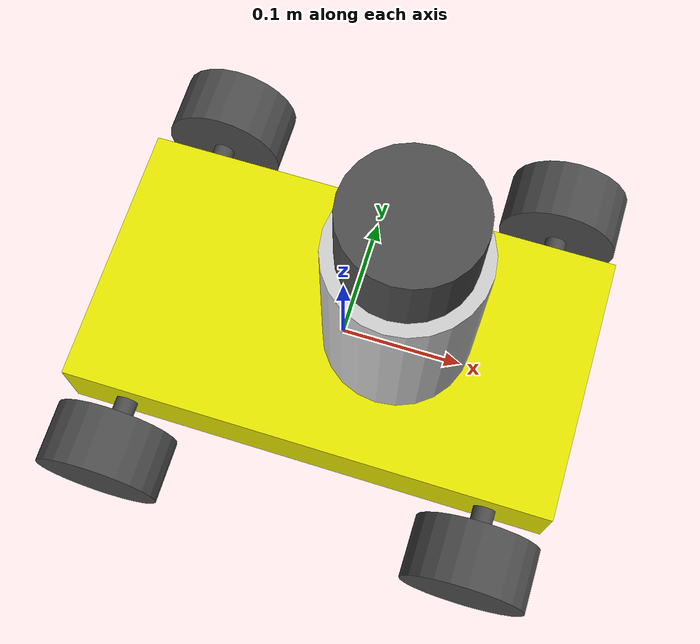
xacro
<?xml version="1.0"?>
<robot name="mallard" xmlns:xacro="http://www.ros.org/wiki/xacro">

  <xacro:include filename="$(find launch_config)/urdf/lidar_sensor_sick_lms.xacro"/>

  <!-- Thrusters components & constants -->
  <xacro:property name="PI" value="3.1415926535897931"/>
  <xacro:property name="tr1" value="0.009" />
  <xacro:property name="tl1" value="0.02" />
  <xacro:property name="tr2" value="0.05" />
  <xacro:property name="tl2" value="0.05" />

  <link name="base_link">
      <!-- Body -->
      <visual name="body">
        <geometry>
          <box size="0.4 0.22 0.06"/>
        </geometry>
        <material name="yellow">
          <color rgba="0.9 0.9 0 1.0"/>
        </material>
        <origin  xyz="0 0 0"/>
      </visual>

      <!-- Wheels -->
      <visual name="wheel_top_left">
        <geometry>
          <cylinder length="${tl2}" radius="${tr2}"/>
        </geometry>
        <material name="dark grey">
          <color rgba="0.3 0.3 0.3 1"/>
        </material>
        <origin  xyz="0.15 0.155 0" rpy="${PI/2} 0 0"/>
      </visual>

      <visual name="wheel_top_left_shaft">
        <geometry>
          <cylinder length="${tl1}" radius="${tr1}"/>
        </geometry>
        <material name="dark grey">
          <color rgba="0.3 0.3 0.3 1"/>
        </material>
        <origin  xyz="0.15 ${0.155 - (tl1/2 + tl2/2)} 0" rpy="${PI/2} 0 0"/>
      </visual>

      <visual name="wheel_top_right">
        <geometry>
          <cylinder length="${tl2}" radius="${tr2}"/>
        </geometry>
        <material name="dark grey">
          <color rgba="0.3 0.3 0.3 1"/>
        </material>
        <origin  xyz="0.15 -0.155 0" rpy="${PI/2} 0 0"/>
      </visual>

      <visual name="wheel_top_right_shaft">
        <geometry>
          <cylinder length="${tl1}" radius="${tr1}"/>
        </geometry>
        <material name="dark grey">
          <color rgba="0.3 0.3 0.3 1"/>
        </material>
        <origin  xyz="0.15 ${-0.155 + (tl1/2 + tl2/2)} 0" rpy="${PI/2} 0 0"/>
      </visual>

      <visual name="wheel_bottom_left">
        <geometry>
          <cylinder length="${tl2}" radius="${tr2}"/>
        </geometry>
        <material name="dark grey">
          <color rgba="0.3 0.3 0.3 1"/>
        </material>
        <origin  xyz="-0.15 0.155 0" rpy="${PI/2} 0 0"/>
      </visual>

      <visual name="wheel_bottom_left_shaft">
        <geometry>
          <cylinder length="${tl1}" radius="${tr1}"/>
        </geometry>
        <material name="dark grey">
          <color rgba="0.3 0.3 0.3 1"/>
        </material>
        <origin  xyz="-0.15 ${0.155 - (tl1/2 + tl2/2)} 0" rpy="${PI/2} 0 0"/>
      </visual>

      <visual name="wheel_bottom_right">
        <geometry>
          <cylinder length="${tl2}" radius="${tr2}"/>
        </geometry>
        <material name="dark grey">
          <color rgba="0.3 0.3 0.3 1"/>
        </material>
        <origin  xyz="-0.15 -0.155 0" rpy="${PI/2} 0 0"/>
      </visual>

      <visual name="wheel_bottom_right_shaft">
        <geometry>
          <cylinder length="${tl1}" radius="${tr1}"/>
        </geometry>
        <material name="dark grey">
          <color rgba="0.3 0.3 0.3 1"/>
        </material>
        <origin  xyz="-0.15 ${-0.155 + (tl1/2 + tl2/2)} 0" rpy="${PI/2} 0 0"/>
      </visual>

      <!-- Collision. For Simulation -->
      <collision name="mallard_box">
        <geometry>
          <box size="0.4 0.36 0.3"/>
        </geometry>
        <origin xyz="0 0 -0.1"/>
      </collision>

      <!-- chassis physics -->
      <inertial>
        <origin xyz="0 0 -0.019" rpy="0 0 0"/>
        <mass value="10.5"/>
        <inertia ixx="0.17" ixy="0.0" ixz="0.0" iyy="0.25" iyz="0.0" izz="0.40"/>
      </inertial>

      <buoyancy>
          <!-- Compensation coefficient is buoyancy force to weight ratio. Mallard
               buoyancy force is 11.52kg, weight is10.5kg.   -->
          <compensation>1.2</compensation>
          <origin xyz= "0 0 0"/>
          <limit radius="0.1"/>
          <damping xyz="120 120 120" rpy="2 2 2"/>
      </buoyancy>
  </link>

  <gazebo reference="base_link">
      <material>Gazebo/Blue</material>
  </gazebo>

  <xacro:lidar
		parent="base_link"
		lidar_name="laser"
    mass="0.27"
		lidar_topic="scan"
		update_rate="15">
    <origin xyz="0.045 0 0.22"/>
	</xacro:lidar>

</robot>

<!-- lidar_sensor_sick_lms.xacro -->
<robot xmlns:xacro="http://www.ros.org/wiki/xacro" name="mallard">

    <xacro:property name="PI" value="3.1415926535897931"/>

    <xacro:macro name="lidar" params="parent lidar_name mass lidar_topic update_rate *origin">

        <joint name="${lidar_name}_joint" type="fixed">
            <xacro:insert_block name="origin"/>
            <parent link="${parent}" />
            <child link="${lidar_name}"/>
        </joint>

        <link name="${lidar_name}">
            <visual name="lidar_top">
                <geometry>
                    <cylinder radius="0.05" length="0.06"/>
                </geometry>
                <origin xyz="0 0 0"/>
                <material name="dark grey">
                    <color rgba="0.3 0.3 0.3 1.0"/>
                </material>
            </visual>

            <visual name="lidar_bottom">
                <geometry>
                    <cylinder radius="0.06" length="0.16"/>
                </geometry>
                <origin xyz="0 0 -0.11"/>
                <material name="grey">
                    <color rgba="0.8 0.8 0.8 1.0"/>
                </material>
            </visual>

            <!-- Inertia. For Simulation -->
            <inertial>
                <mass value="${mass}"/>
                <inertia ixx="0.00020" ixy="0.0" ixz="0.0" iyy="0.00020" iyz="0.0" izz="0.00015"/>
            </inertial>

        </link>

        <gazebo reference="${lidar_name}">
            <material>Gazebo/Blue</material>
            <sensor type="ray" name="head_hokuyo_sensor">
                <pose>0 0 0 0 0 0</pose>
                <visualize>true</visualize>
                <update_rate>${update_rate}</update_rate>
                <ray>
                    <scan>
                        <horizontal>
                            <samples>800</samples>
                            <resolution>1</resolution>
                            <min_angle>${-3*PI/4}</min_angle>
                            <max_angle>${3*PI/4}</max_angle>
                        </horizontal>
                    </scan>
                  <range>
                      <min>0.05</min>
                      <max>25.0</max>
                      <resolution>0.01</resolution>
                  </range>
                  <noise>
                      <type>none</type>
                      <mean>0.0</mean>
                      <stddev>0.01</stddev>
                  </noise>
                </ray>

                <plugin name="gazebo_ros_head_hokuyo_controller" filename="libgazebo_ros_laser.so">
                    <robotNamespace>/</robotNamespace>
                    <alwaysOn>true</alwaysOn>
                    <update_rate>${update_rate}</update_rate>
                    <topicName>${lidar_topic}</topicName>
                    <frameName>${lidar_name}</frameName>
                    <bodyName>${lidar_name}</bodyName>
                </plugin>
            </sensor>
        </gazebo>
    </xacro:macro>

</robot>
